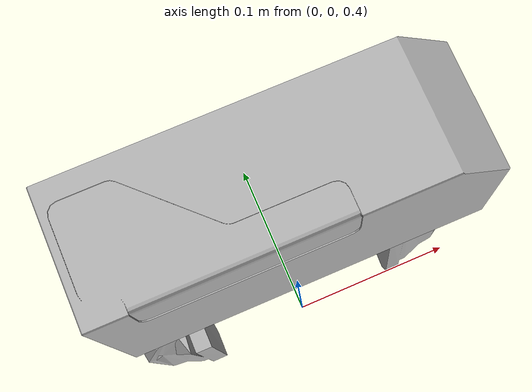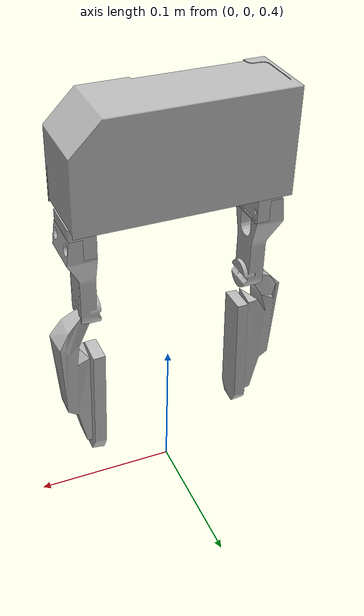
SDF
<?xml version="1.0" ?>
<sdf version='1.6'>
  <world name='default'>
  <model name='wsg50_with_gripper'>
    <pose>0 0 0.7 3.14 0 0</pose>

    <link name='world'>
	</link>

    <joint name='base_joint' type='prismatic'>
      <parent>world</parent>
      <child>base_link</child>
      <axis>
        <xyz>0 0 1</xyz>
        <limit>
          <lower>-0.5</lower>
          <upper>10</upper>
          <effort>1</effort>
          <velocity>1</velocity>
        </limit>
        <dynamics>
          <damping>0</damping>
          <friction>0</friction>
          <spring_reference>0</spring_reference>
          <spring_stiffness>0</spring_stiffness>
        </dynamics>
      </axis>
    </joint>

    <link name='base_link'>
      <pose>0 0 0 0 0 0</pose>
      <inertial>
        <pose>0 0 0 0 0 0</pose>
        <mass>1.2</mass>
        <inertia>
          <ixx>1</ixx>
          <ixy>0</ixy>
          <ixz>0</ixz>
          <iyy>1</iyy>
          <iyz>0</iyz>
          <izz>1</izz>
        </inertia>
      </inertial>

      <visual name='base_link_visual'>
        <pose>0 0 0 0 -0 0</pose>
        <geometry>
          <mesh>
            <scale>1 1 1</scale>
            <uri>meshes/WSG50_110.stl</uri>
          </mesh>
        </geometry>
        <material>

        </material>
      </visual>

    </link>

    <link name='motor'>
      <pose>0 0 0.03 0 0 0</pose>
      <inertial>
        <pose>0 0 0 0 0 0</pose>
        <mass>0.1</mass>
        <inertia>
          <ixx>0.1</ixx>
          <ixy>0</ixy>
          <ixz>0</ixz>
          <iyy>0.1</iyy>
          <iyz>0</iyz>
          <izz>0.1</izz>
        </inertia>
      </inertial>
      <visual name='motor_visual'>
        <pose>0 0 0.01 0 0 0</pose>
        <geometry>
		  <box>
            <size>0.02 0.02 0.02 </size>
          </box>
        </geometry>
      </visual>
    </link>

    <joint name='base_joint_motor' type='prismatic'>
      <child>motor</child>
      <parent>base_link</parent>
      <axis>
        <xyz>0 0 1</xyz>
        <limit>
          <lower>-0.055</lower>
          <upper>0.001</upper>
          <effort>10.0</effort>
          <velocity>10.0</velocity>
        </limit>
        <dynamics>
          <damping>0</damping>
          <friction>0</friction>
          <spring_reference>0</spring_reference>
          <spring_stiffness>0</spring_stiffness>
        </dynamics>
      </axis>
    </joint>

    <link name='left_hinge'>
      <pose>0 0 0.04 0 0 0</pose>
      <inertial>
        <pose>0 0 0.035 0 0 0</pose>
        <mass>0.1</mass>
        <inertia>
          <ixx>0.1</ixx>
          <ixy>0</ixy>
          <ixz>0</ixz>
          <iyy>0.1</iyy>
          <iyz>0</iyz>
          <izz>0.1</izz>
        </inertia>
      </inertial>
      <visual name='motor_visual'>
        <pose>-0.03 0 0.01 0 -1.2 0</pose>
        <geometry>
		  <box>
            <size>0.02 0.02 0.07 </size>
          </box>
        </geometry>
      </visual>
    </link>

    <joint name='motor_left_hinge_joint' type='revolute'>
      <child>left_hinge</child>
      <parent>motor</parent>
      <axis>
        <xyz>0 1 0</xyz>
        <limit>
          <lower>-20.0</lower>
          <upper>20.0</upper>
          <effort>10</effort>
          <velocity>10</velocity>
        </limit>
        <dynamics>
          <damping>0</damping>
          <friction>0</friction>
          <spring_reference>0</spring_reference>
          <spring_stiffness>0</spring_stiffness>
        </dynamics>
        <use_parent_model_frame>0</use_parent_model_frame>
      </axis>
    </joint>

    <link name='right_hinge'>
      <pose>0 0 0.04 0 0 0</pose>
      <inertial>
        <pose>0 0 0.035 0 0 0</pose>
        <mass>0.1</mass>
        <inertia>
          <ixx>0.1</ixx>
          <ixy>0</ixy>
          <ixz>0</ixz>
          <iyy>0.1</iyy>
          <iyz>0</iyz>
          <izz>0.1</izz>
        </inertia>
      </inertial>
      <visual name='motor_visual'>
        <pose>0.03 0 0.01 0 1.2 0</pose>
        <geometry>
		  <box>
            <size>0.02 0.02 0.07 </size>
          </box>
        </geometry>
      </visual>
    </link>

    <joint name='motor_right_hinge_joint' type='revolute'>
      <child>right_hinge</child>
      <parent>motor</parent>
      <axis>
        <xyz>0 1 0</xyz>
        <limit>
          <lower>-20.0</lower>
          <upper>20.0</upper>
          <effort>10</effort>
          <velocity>10</velocity>
        </limit>
        <dynamics>
          <damping>0</damping>
          <friction>0</friction>
          <spring_reference>0</spring_reference>
          <spring_stiffness>0</spring_stiffness>
        </dynamics>
        <use_parent_model_frame>0</use_parent_model_frame>
      </axis>
    </joint>

    <link name='gripper_left'>
      <pose>-0.055 0 0.06 0 -0 0</pose>
      <inertial>
        <pose>0 0 0.0115 0 -0 0</pose>
        <mass>0.2</mass>
        <inertia>
          <ixx>0.1</ixx>
          <ixy>0</ixy>
          <ixz>0</ixz>
          <iyy>0.1</iyy>
          <iyz>0</iyz>
          <izz>0.1</izz>
        </inertia>
      </inertial>

      <visual name='gripper_left_visual'>
        <pose>0 0 -0.06 0 0 0</pose>
        <geometry>
          <mesh>
            <scale>0.001 0.001 0.001</scale>
            <uri>meshes/GUIDE_WSG50_110.stl</uri>
          </mesh>
        </geometry>
      </visual>
      <visual name='gripper_left_fixed_joint_lump__finger_left_visual_1'>
        <pose>0 0 -0.037 0 0 0</pose>
        <geometry>
          <mesh>
            <scale>0.001 0.001 0.001</scale>
            <uri>meshes/WSG-FMF.stl</uri>
          </mesh>
        </geometry>
      </visual>

    </link>

    <joint name='gripper_left_hinge_joint' type='prismatic'>
      <child>gripper_left</child>
      <parent>base_link</parent>
      <axis>
        <xyz>1 0 0</xyz>
        <limit>
          <lower>-0.01</lower>
          <upper>0.05</upper>
          <effort>1</effort>
          <velocity>1</velocity>
        </limit>
        <dynamics>
          <damping>0</damping>
          <friction>0</friction>
          <spring_reference>0</spring_reference>
          <spring_stiffness>0</spring_stiffness>
        </dynamics>
      </axis>
    </joint>

    <link name='gripper_right'>
      <pose>0.055 0 0.06 0 0 3.14159</pose>
      <inertial>
        <pose>0 0 0.0115 0 -0 0</pose>
        <mass>0.2</mass>
        <inertia>
          <ixx>0.1</ixx>
          <ixy>0</ixy>
          <ixz>0</ixz>
          <iyy>0.1</iyy>
          <iyz>0</iyz>
          <izz>0.1</izz>
        </inertia>
      </inertial>

      <visual name='gripper_right_visual'>
        <pose>0 0 -0.06 0 0 0</pose>
        <geometry>
          <mesh>
            <scale>0.001 0.001 0.001</scale>
            <uri>meshes/GUIDE_WSG50_110.stl</uri>
          </mesh>
        </geometry>
      </visual>
      <visual name='gripper_right_fixed_joint_lump__finger_right_visual_1'>
        <pose>0 0 -0.037 0 0 0</pose>
        <geometry>
          <mesh>
            <scale>0.001 0.001 0.001</scale>
            <uri>meshes/WSG-FMF.stl</uri>
          </mesh>
        </geometry>
      </visual>
    </link>

    <joint name='gripper_right_hinge_joint' type='prismatic'>
      <child>gripper_right</child>
      <parent>base_link</parent>
      <axis>
        <xyz>1 0 0</xyz>
        <limit>
          <lower>-0.01</lower>
          <upper>0.05</upper>
          <effort>1</effort>
          <velocity>1</velocity>
        </limit>
        <dynamics>
          <damping>0</damping>
          <friction>0</friction>
          <spring_reference>0</spring_reference>
          <spring_stiffness>0</spring_stiffness>
        </dynamics>
      </axis>
    </joint>

    <link name='finger_right'>
      <contact>
        <spinning_friction>.3</spinning_friction>
        <rolling_friction>0.04</rolling_friction>
      </contact>
      <pose>0.062 0 0.145 0 0 1.5708</pose>
      <inertial>
        <mass>0.2</mass>
        <inertia>
          <ixx>0.1</ixx>
          <ixy>0</ixy>
          <ixz>0</ixz>
          <iyy>0.1</iyy>
          <iyz>0</iyz>
          <izz>0.1</izz>
        </inertia>
      </inertial>

        <collision name='finger_right_collision'>
  	<pose>0 0 0.042 0 0 0 </pose>
  	<geometry>
         <box>
                <size>0.02 0.02 0.15 </size>
              </box>

          </geometry>
        </collision>

      <visual name='finger_right_visual'>
        <pose>0 0 0 0 0 0 </pose>
        <geometry>
          <mesh>
            <scale>1 1 1 </scale>
            <uri>meshes/l_gripper_tip_scaled.stl</uri>
          </mesh>
        </geometry>
      </visual>
    </link>

    <joint name='gripper_finger_right' type='fixed'>
      <parent>gripper_right</parent>
      <child>finger_right</child>
    </joint>

    <link name='finger_left'>
      <contact>
        <spinning_friction>.3</spinning_friction>
        <rolling_friction>0.04</rolling_friction>
      </contact>
      <pose>-0.062 0 0.145 0 0 4.71239</pose>
      <inertial>
        <mass>0.2</mass>
        <inertia>
          <ixx>0.1</ixx>
          <ixy>0</ixy>
          <ixz>0</ixz>
          <iyy>0.1</iyy>
          <iyz>0</iyz>
          <izz>0.1</izz>
        </inertia>
      </inertial>

      <collision name='finger_left_collision'>
        <pose>0 0 0.042 0 0 0 </pose>
        <geometry>
               <box>
              <size>0.02 0.02 0.15 </size>
            </box>

        </geometry>
      </collision>

      <visual name='finger_left_visual'>
        <pose>0 0 0 0 0 0 </pose>
        <geometry>
          <mesh>
            <scale>1 1 1 </scale>
            <uri>meshes/l_gripper_tip_scaled.stl</uri>
          </mesh>
        </geometry>
      </visual>
    </link>

    <joint name='gripper_finger_left' type='fixed'>
      <parent>gripper_left</parent>
      <child>finger_left</child>
    </joint>
  </model>
</world>
</sdf>
